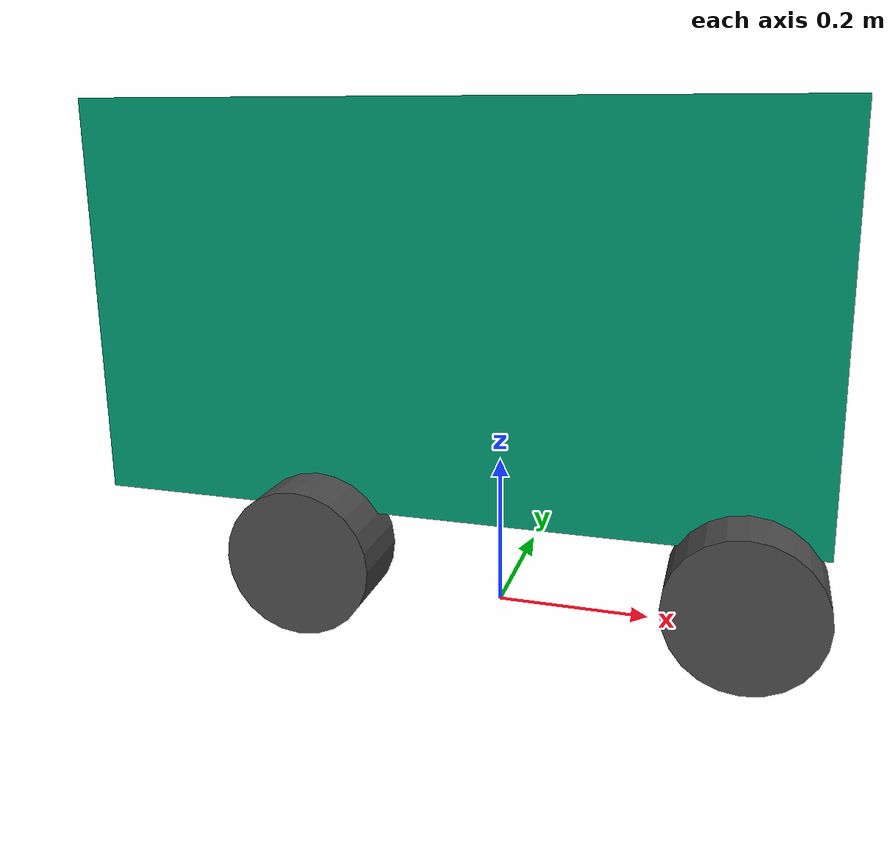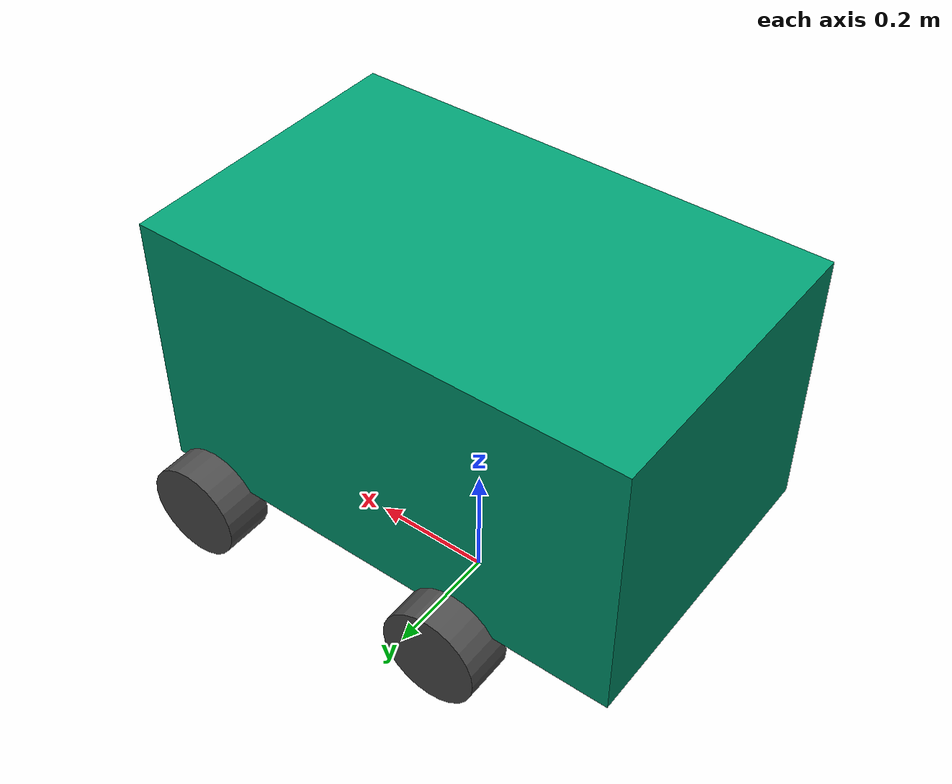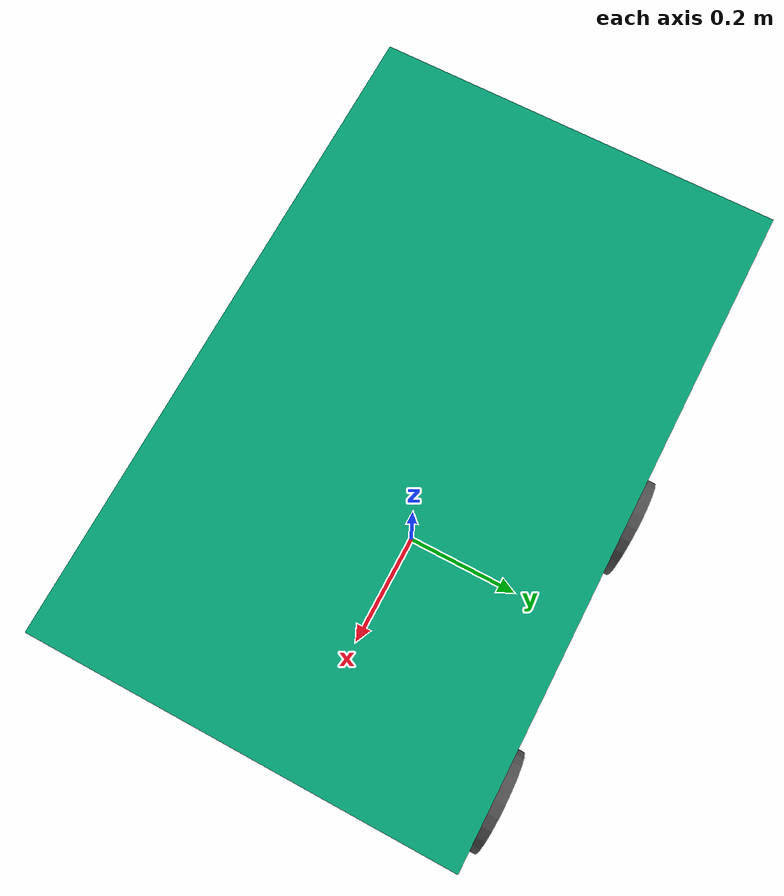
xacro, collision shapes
<?xml version="1.0"?>
<robot xmlns:xacro="http://www.ros.org/wiki/xacro" name="anhc_bot">

    <!--................................ XACRO CONSTANTS .............................. -->

    <!-- Chassis dimensions (từ phân tích mesh baselink.obj) -->
    <xacro:property name="chassis_mass"   value="50"/>
    <xacro:property name="chassis_length" value="0.80"/>
    <xacro:property name="chassis_width"  value="0.62"/>
    <xacro:property name="chassis_height" value="0.60"/>

    <!-- Wheel parameters (từ phân tích mesh: size 0.16x0.16x0.08 m) -->
    <xacro:property name="wheel_mass"     value="1.5"/>
    <xacro:property name="wheel_radius"   value="0.08"/>
    <xacro:property name="wheel_width"    value="0.08"/>
    <xacro:property name="wheel_friction" value="1.0"/>

    <!-- Track geometry -->
    <!-- Khoảng cách tâm-tâm 2 bánh trái-phải -->
    <xacro:property name="track_width"    value="0.54"/>
    <!-- Khoảng cách tâm-tâm bánh trước - bánh sau -->
    <xacro:property name="wheel_base"     value="0.56"/>

    <!-- 2D LiDAR parameters -->
    <xacro:property name="two_d_lidar_update_rate"  value="30"/>
    <xacro:property name="two_d_lidar_sample_size"  value="361"/>
    <xacro:property name="two_d_lidar_min_angle"    value="0"/>
    <xacro:property name="two_d_lidar_max_angle"    value="360"/>
    <xacro:property name="two_d_lidar_min_range"    value="0.15"/>
    <xacro:property name="two_d_lidar_max_range"    value="16"/>

    <!-- Camera -->
    <xacro:property name="camera_horizontal_fov" value="60"/>

    <!--................................ XACRO ARGS .................................. -->

    <xacro:arg name="robot_namespace"        default=""/>
    <xacro:arg name="wheel_odom_topic"       default="odom"/>
    <xacro:arg name="camera_enabled"         default="false"/>
    <xacro:arg name="stereo_camera_enabled"  default="false"/>
    <xacro:arg name="two_d_lidar_enabled"    default="false"/>
    <xacro:arg name="publish_wheel_odom_tf"  default="true"/>
    <xacro:arg name="ground_truth_frame"     default="map"/>
    <xacro:arg name="sim_gazebo"             default="false"/>
    <xacro:arg name="sim_ign"                default="false"/>
    <xacro:arg name="sim_gz"                 default="false"/>
    <xacro:arg name="odometry_source"        default="world"/>

    <xacro:property name="odometry_source" value="$(arg odometry_source)"/>

    <!-- ............................... LOAD MACROS ................................. -->

    <xacro:include filename="$(find anhc_bot)/urdf/materials.xacro"/>
    <xacro:include filename="$(find anhc_bot)/urdf/macros.xacro"/>

    <xacro:if value="$(arg sim_gazebo)">
        <xacro:include filename="$(find anhc_bot)/urdf/gazebo.xacro"/>
    </xacro:if>

    <xacro:if value="$(arg sim_ign)">
        <xacro:include filename="$(find anhc_bot)/urdf/ign.xacro"/>
    </xacro:if>

    <xacro:if value="$(arg sim_gz)">
        <xacro:include filename="$(find anhc_bot)/urdf/gz.xacro"/>
    </xacro:if>

    <!-- ========================= BASE LINKS ================================ -->

    <!-- base_footprint: điểm tiếp xúc đất, trục gốc điều hướng -->
    <link name="base_footprint"/>

    <!-- base_link: tâm robot ở độ cao tâm bánh xe (wheel_radius) -->
    <link name="base_link"/>

    <joint name="base_joint" type="fixed">
        <parent link="base_footprint"/>
        <child  link="base_link"/>
        <origin xyz="0.0 0.0 ${wheel_radius + 0.06}" rpy="0 0 0"/>
    </joint>

    <!-- ========================= CHASSIS =================================== -->
    <link name="chassis_link">
        <collision>
            <origin xyz="0 0 ${chassis_height/2}" rpy="0 0 0"/>
            <geometry>
                <box size="${chassis_length} 0.50 ${chassis_height - 0.16}"/>
            </geometry>
        </collision>

        <visual>
            <!-- Offset = -rotated_mesh_center + Z lift -->
            <origin xyz="1.0101 -0.0001 -0.0020" rpy="${pi/2} 0 0"/>
            <geometry>
                <mesh filename="file://$(find anhc_bot)/meshes/anhc_bot/baselink.obj" scale="1 1 1"/>
            </geometry>
        </visual>

        <inertial>
            <origin xyz="0 0 ${chassis_height/2}" rpy="0 0 0"/>
            <mass value="${chassis_mass}"/>
            <xacro:box_inertia m="${chassis_mass}"
                               x="${chassis_length}"
                               y="${chassis_width}"
                               z="${chassis_height}"/>
        </inertial>
    </link>

    <joint name="chassis_joint" type="fixed">
        <parent link="base_link"/>
        <child  link="chassis_link"/>
        <origin xyz="0 0 0" rpy="0 0 0"/>
    </joint>

    <!-- ========================= 4 WHEELS ================================== -->

    <!-- Front-Left wheel (chủ động - DiffDrive LEFT) -->
    <xacro:wheel_link
        name="front_left"
        mesh_file="front_left_wheel"
        origin_x="${ wheel_base/2 + 0.04}" origin_y="${ track_width/2}" origin_z="0.04"
        mesh_cx="0.0085"  mesh_cy="0.0721"  mesh_cz="0.0281"
        joint_type="continuous" flip_y="1"/>

    <!-- Front-Right wheel (chủ động - DiffDrive RIGHT) -->
    <xacro:wheel_link
        name="front_right"
        mesh_file="front_right_wheel"
        origin_x="${ wheel_base/2 + 0.04}" origin_y="${-track_width/2}" origin_z="0.04"
        mesh_cx="-0.3637" mesh_cy="0.0582"  mesh_cz="0.0734"
        joint_type="continuous" flip_y="-1"/>

    <!-- Back-Left wheel (bị động nhưng continuous để theo DiffDrive) -->
    <xacro:wheel_link
        name="back_left"
        mesh_file="back_left_wheel"
        origin_x="${-wheel_base/2 + 0.14}" origin_y="${ track_width/2}" origin_z="0.04"
        mesh_cx="0.0000"  mesh_cy="0.0776"  mesh_cz="0.0055"
        joint_type="continuous" flip_y="1"/>

    <!-- Back-Right wheel (bị động nhưng continuous để theo DiffDrive) -->
    <xacro:wheel_link
        name="back_right"
        mesh_file="back_right_wheel"
        origin_x="${-wheel_base/2 + 0.14}" origin_y="${-track_width/2}" origin_z="0.04"
        mesh_cx="0.2442"  mesh_cy="0.0652"  mesh_cz="-0.2464"
        joint_type="continuous" flip_y="-1"/>

    <!-- ========================= IMU ======================================= -->

    <link name="imu_frame"/>

    <joint name="imu_joint" type="fixed">
        <parent link="base_link"/>
        <child  link="imu_frame"/>
        <origin xyz="0.0 0.0 0.05" rpy="0.0 0.0 0.0"/>
    </joint>

    <!-- ========================= 2D LIDAR ================================== -->
    <!--
        lidar.obj: size 0.10x0.06x0.08 m, center=(-0.0132,-0.0205,0.0000)
        Đặt trên nóc chassis: Z = chassis_height = 0.60m so với base_link
    -->
    <xacro:if value="$(arg two_d_lidar_enabled)">

        <link name="two_d_lidar">
            <collision>
                <origin xyz="0 0 0" rpy="0 0 0"/>
                <geometry>
                    <cylinder length="0.08" radius="0.05"/>
                </geometry>
            </collision>

            <visual>
                <origin xyz="0.0132 0.0 0.0205" rpy="${pi/2} 0 0"/>
                <geometry>
                    <mesh filename="file://$(find anhc_bot)/meshes/anhc_bot/lidar.obj" scale="1 1 1"/>
                </geometry>
            </visual>

            <inertial>
                <origin xyz="0 0 0" rpy="0 0 0"/>
                <mass value="0.2"/>
                <xacro:cylinder_inertia m="0.2" r="0.05" h="0.08"/>
            </inertial>
        </link>

        <joint name="two_d_lidar_joint" type="fixed">
            <parent link="base_link"/>
            <child  link="two_d_lidar"/>
            <!-- Trên nóc chassis, chính giữa -->
            <origin xyz="0.0 0.0 ${chassis_height + 0.04}" rpy="0 0 0"/>
        </joint>

        <gazebo reference="two_d_lidar">
            <material>Gazebo/DarkGrey</material>
        </gazebo>

    </xacro:if>

    <!-- ========================= CAMERA ==================================== -->
    <!--
        camera.obj: size 0.08x0.06x0.18 m, center=(-0.0133,-0.0128,0.0000)
        Đặt phía trước chassis, ở độ cao vừa phải
    -->
    <xacro:if value="$(arg camera_enabled)">

        <link name="camera_link">
            <collision>
                <origin xyz="0 0 0" rpy="0 0 0"/>
                <geometry>
                    <box size="0.08 0.18 0.06"/>
                </geometry>
            </collision>

            <visual>
                <origin xyz="0.0133 0.0 0.0128" rpy="${pi/2} 0 0"/>
                <geometry>
                    <mesh filename="file://$(find anhc_bot)/meshes/anhc_bot/camera.obj" scale="1 1 1"/>
                </geometry>
            </visual>

            <inertial>
                <mass value="0.1"/>
                <xacro:box_inertia m="0.1" x="0.08" y="0.18" z="0.06"/>
            </inertial>
        </link>

        <joint name="camera_joint" type="fixed">
            <parent link="base_link"/>
            <child  link="camera_link"/>
            <!-- Phía trước, ở 1/3 chiều cao chassis -->
            <origin xyz="${chassis_length/2 - 0.02} 0.0 ${chassis_height * 0.35}" rpy="0 0 0"/>
        </joint>

        <link name="camera_optical"/>
        <joint name="camera_optical_joint" type="fixed">
            <origin xyz="0 0 0" rpy="${-pi/2} 0 ${-pi/2}"/>
            <parent link="camera_link"/>
            <child  link="camera_optical"/>
        </joint>

        <gazebo reference="camera_link">
            <material>Gazebo/DarkGrey</material>
        </gazebo>

    </xacro:if>

    <!-- ========================= STEREO CAMERA ============================= -->

    <xacro:if value="$(arg stereo_camera_enabled)">

        <link name="stereo_camera">
            <collision>
                <origin xyz="0 0 0" rpy="0 0 0"/>
                <geometry>
                    <box size="0.08 0.18 0.06"/>
                </geometry>
            </collision>

            <visual>
                <origin xyz="0.0133 0.0 0.0128" rpy="${pi/2} 0 0"/>
                <geometry>
                    <mesh filename="file://$(find anhc_bot)/meshes/anhc_bot/camera.obj" scale="1 1 1"/>
                </geometry>
            </visual>

            <inertial>
                <mass value="0.1"/>
                <xacro:box_inertia m="0.1" x="0.08" y="0.18" z="0.06"/>
            </inertial>
        </link>

        <joint name="stereo_camera_joint" type="fixed">
            <origin rpy="0 0 0" xyz="${chassis_length/2 - 0.02} 0.0 ${chassis_height * 0.35}"/>
            <parent link="base_link"/>
            <child  link="stereo_camera"/>
        </joint>

        <link name="stereo_camera_optical"/>
        <joint name="stereo_camera_optical_joint" type="fixed">
            <origin xyz="0 0 0" rpy="${-pi/2} 0 ${-pi/2}"/>
            <parent link="stereo_camera"/>
            <child  link="stereo_camera_optical"/>
        </joint>

    </xacro:if>

</robot>

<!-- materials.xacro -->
<robot xmlns:xacro="http://www.ros.org/wiki/xacro" name="anhc_bot">

    <material name="black">
        <color rgba="0.0 0.0 0.0 1.0"/>
    </material>

    <material name="blue">
        <color rgba="0.0 0.0 0.8 1.0"/>
    </material>

    <material name="green">
        <color rgba="0.0 0.8 0.0 1.0"/>
    </material>

    <material name="yellow">
        <color rgba="1.0 1.0 0.0 1.0"/>
    </material>

    <material name="dark_grey">
        <color rgba="0.2 0.2 0.2 1.0"/>
    </material>

    <material name="orange">
        <color rgba="${255/255} ${108/255} ${10/255} 1.0"/>
    </material>

    <material name="brown">
        <color rgba="${139/255} ${69/255} ${19/255} 1.0"/>
    </material>

    <material name="red">
        <color rgba="0.8 0.0 0.0 1.0"/>
    </material>

    <material name="turquoise">
        <color rgba="${64/255} ${224/255} ${208/255} 1.0"/>
    </material>

    <material name="purple">
        <color rgba="${128/255} ${0/255} ${128/255} 1.0"/>
    </material>

    <material name="white">
        <color rgba="1.0 1.0 1.0 1.0"/>
    </material>

    <material name="aluminium">
        <color rgba="0.5 0.5 0.5 1"/>
    </material>

    <material name="plastic">
        <color rgba="0.1 0.1 0.1 1"/>
    </material>

</robot>

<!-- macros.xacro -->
<robot xmlns:xacro="http://www.ros.org/wiki/xacro" name="anhc_bot">

    <!--................................ INERTIA MATRICES .............................. -->

    <xacro:macro name="cylinder_inertia" params="m r h">
        <inertia ixx="${m * (3 * r * r + h * h) / 12}" ixy="0" ixz="0"
                 iyy="${m * (3 * r * r + h * h) / 12}" iyz="0"
                 izz="${m * r * r / 2}" />
    </xacro:macro>

    <xacro:macro name="box_inertia" params="m x y z">
        <inertia ixx="${m * (y * y + z * z) / 12}" ixy="0" ixz="0"
                 iyy="${m * (x * x + z * z) / 12}" iyz="0"
                 izz="${m * (y * y + x * x) / 12}" />
    </xacro:macro>

    <xacro:macro name="sphere_inertia" params="m r">
        <inertia ixx="${2 * m * r * r / 5}" ixy="0" ixz="0"
                 iyy="${2 * m * r * r / 5}" iyz="0"
                 izz="${2 * m * r * r / 5}" />
    </xacro:macro>

    <!-- ............... WHEEL MACRO (dùng mesh OBJ, axis quay theo Y) .............. -->
    <xacro:macro name="wheel_link" params="name mesh_file
                                           origin_x origin_y origin_z
                                           mesh_cx mesh_cy mesh_cz
                                           joint_type flip_y">

        <link name="${name}_wheel">
            <!-- Collision: cylinder (radius=wheel_radius, length=wheel_width) -->
            <collision>
                <origin xyz="0 0 0" rpy="${pi/2} 0 0"/>
                <geometry>
                    <cylinder radius="${wheel_radius}" length="${wheel_width}"/>
                </geometry>
            </collision>

            <!-- Visual: OBJ mesh, offset để tâm trùng gốc joint -->
            <visual>
                <origin xyz="${-mesh_cx} ${flip_y * mesh_cz} ${-flip_y * mesh_cy}" rpy="${flip_y * pi/2} 0 0"/>
                <geometry>
                    <mesh filename="file://$(find anhc_bot)/meshes/anhc_bot/${mesh_file}.obj" scale="1 1 1"/>
                </geometry>
            </visual>

            <inertial>
                <origin xyz="0 0 0" rpy="${flip_y * pi/2} 0 0"/>
                <mass value="${wheel_mass}"/>
                <xacro:cylinder_inertia m="${wheel_mass}" r="${wheel_radius}" h="${wheel_width}"/>
            </inertial>
        </link>

        <gazebo reference="${name}_wheel">
            <visual>
                <material>
                    <ambient>0.1 0.1 0.1 1.0</ambient>
                    <diffuse>0.1 0.1 0.1 1.0</diffuse>
                    <specular>0.05 0.05 0.05 1.0</specular>
                </material>
            </visual>
        </gazebo>

        <joint name="${name}_wheel_joint" type="${joint_type}">
            <parent link="base_link"/>
            <child  link="${name}_wheel"/>
            <origin xyz="${origin_x} ${origin_y} ${origin_z}" rpy="0 0 0"/>
            <axis xyz="0 1 0"/>
            <dynamics damping="0.1" friction="0.1"/>
        </joint>

        <gazebo reference="${name}_wheel">
            <mu1>${wheel_friction}</mu1>
            <mu2>${wheel_friction}</mu2>
            <kp>1e6</kp>
            <kd>100</kd>
            <minDepth>0.001</minDepth>
            <material>Gazebo/DarkGrey</material>
        </gazebo>

    </xacro:macro>

</robot>
